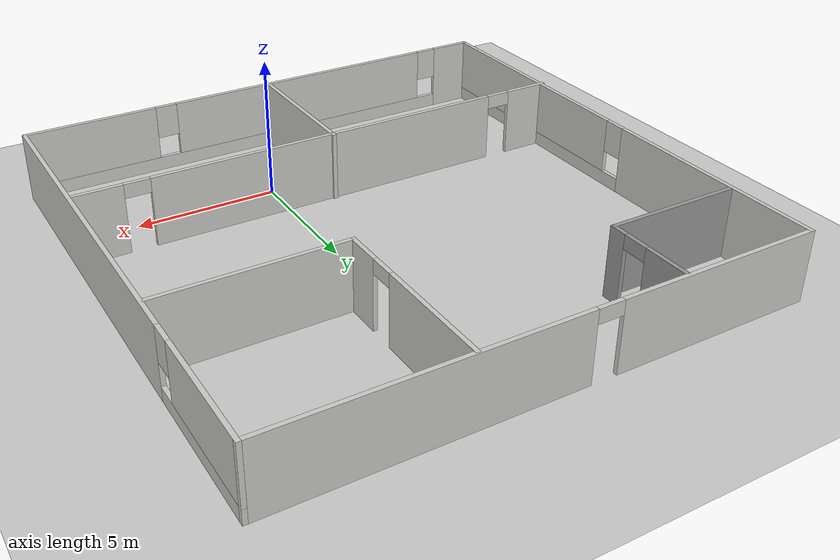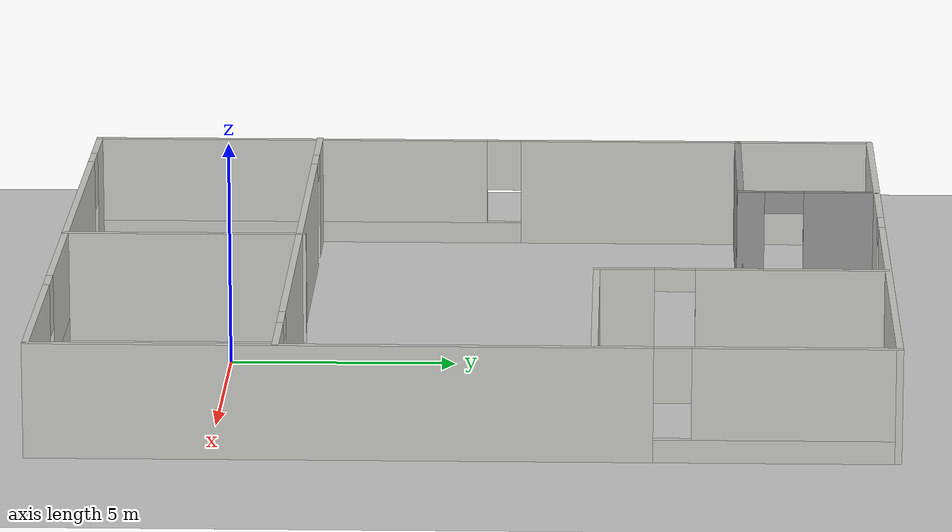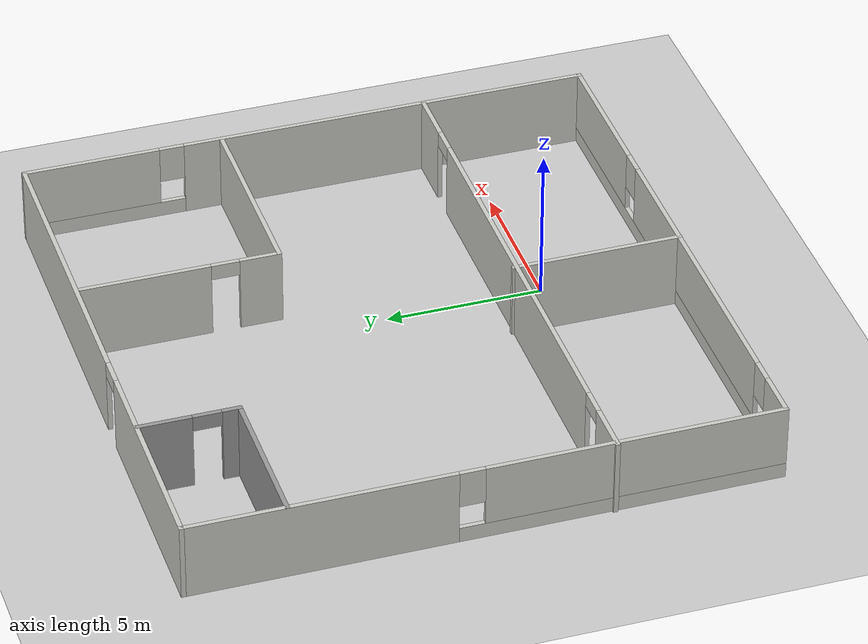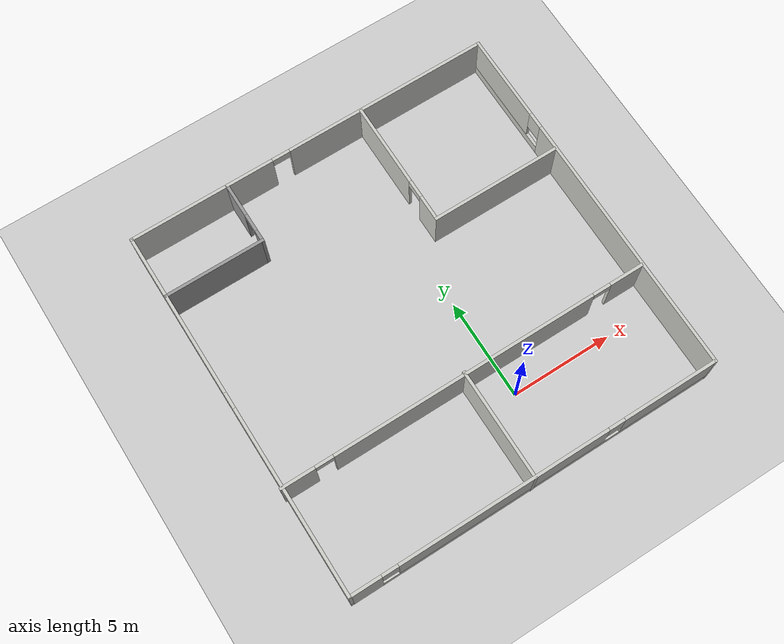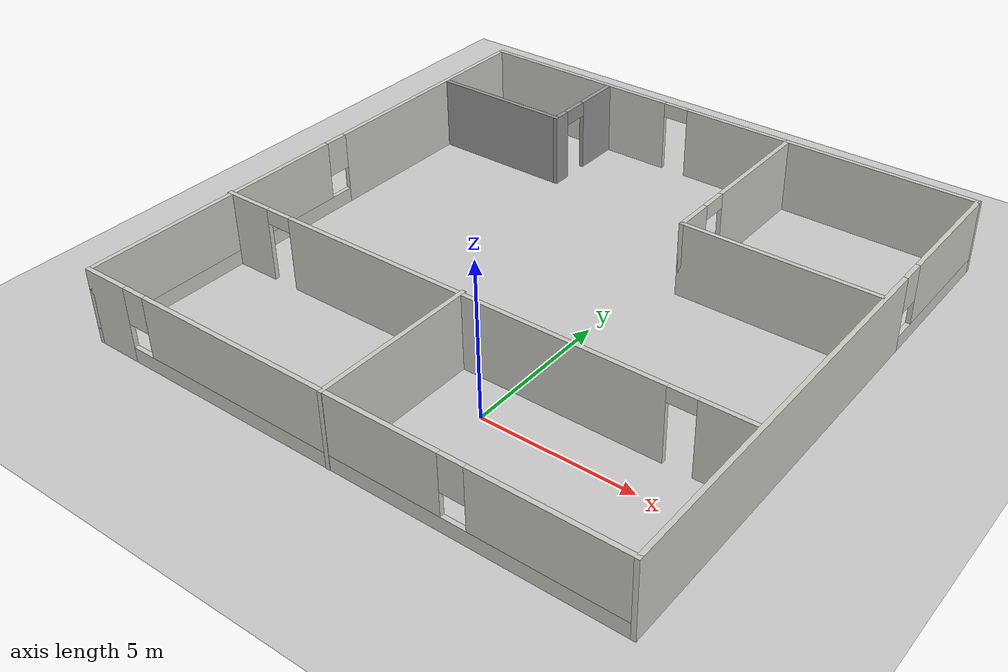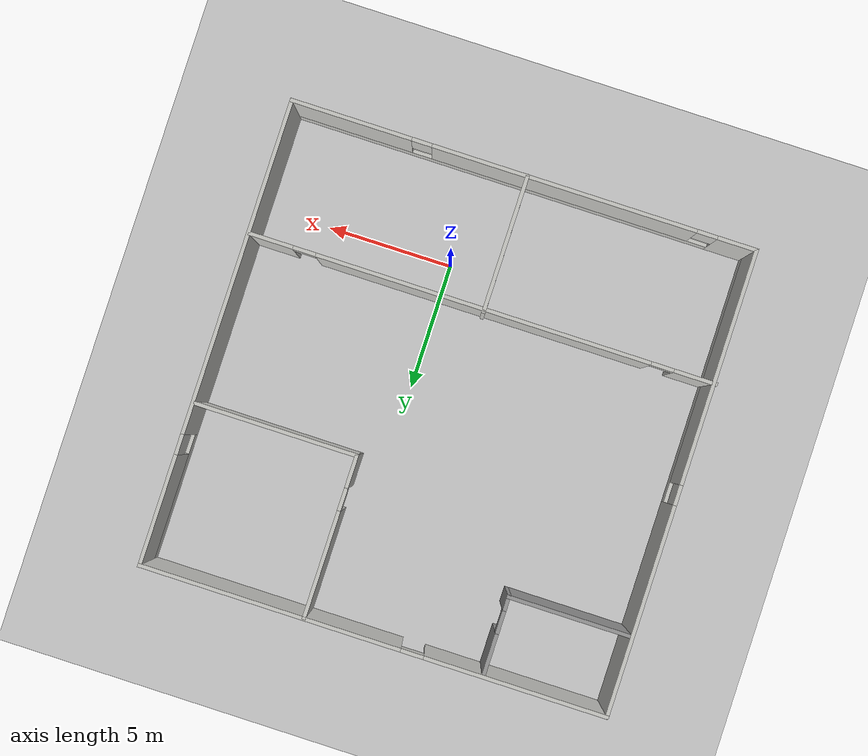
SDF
<sdf version="1.7">
 <world name="default">
  <light name="sun" type="directional">
   <pose>0 0 10 0 -0 0</pose>
   <diffuse>0.8 0.8 0.8 1</diffuse>
   <specular>0.2 0.2 0.2 1</specular>
   <attenuation>
    <range>1000</range>
    <constant>0.9</constant>
    <linear>0.01</linear>
    <quadratic>0.001</quadratic>
   </attenuation>
   <direction>-0.5 0.1 -0.9</direction>
   <spot><inner_angle>0</inner_angle><outer_angle>0</outer_angle><falloff>0</falloff></spot>
  </light>
  <model name="ground_plane">
   <static>1</static>
   <link name="link">
    <collision name="collision">
     <geometry><plane><normal>0 0 1</normal><size>100 100</size></plane></geometry>
     <surface><friction><ode><mu>100</mu><mu2>50</mu2></ode></friction></surface>
    </collision>
    <visual name="visual">
     <cast_shadows>0</cast_shadows>
     <geometry><plane><normal>0 0 1</normal><size>100 100</size></plane></geometry>
     <material>
      <script><uri>file://media/materials/scripts/gazebo.material</uri><name>Gazebo/Grey</name></script>
     </material>
    </visual>
   </link>
  </model>
  <gravity>0 0 -9.8</gravity>
  <magnetic_field>6e-06 2.3e-05 -4.2e-05</magnetic_field>
  <atmosphere type="adiabatic"/>
  <physics type="ode">
   <max_step_size>0.001</max_step_size>
   <real_time_factor>1</real_time_factor>
   <real_time_update_rate>1000</real_time_update_rate>
  </physics>
  <scene><ambient>0.4 0.4 0.4 1</ambient><background>0.7 0.7 0.7 1</background><shadows>1</shadows></scene>
  <audio><device>default</device></audio>
  <spherical_coordinates>
   <surface_model>EARTH_WGS84</surface_model>
   <latitude_deg>0</latitude_deg>
   <longitude_deg>0</longitude_deg>
   <elevation>0</elevation>
   <heading_deg>0</heading_deg>
  </spherical_coordinates>
  <model name="my_house">
   <pose>-1.69027 5.65214 0 0 -0 0</pose>
   <link name="Wall_0">
    <pose>-9.13963 -0.300707 0 0 -0 -1.5708</pose>
    <visual name="Wall_0_Visual_0">
     <pose>-5.06693 0 1.25 0 -0 0</pose>
     <geometry><box><size>8.36613 0.15 2.5</size></box></geometry>
     <material>
      <script><uri>file://media/materials/scripts/gazebo.material</uri><name>Gazebo/CeilingTiled</name></script>
      <ambient>1 1 1 1</ambient>
     </material>
     <meta><layer>0</layer></meta>
    </visual>
    <collision name="Wall_0_Collision_0">
     <geometry><box><size>8.36613 0.15 2.5</size></box></geometry>
     <pose>-5.06693 0 1.25 0 -0 0</pose>
    </collision>
    <visual name="Wall_0_Visual_1">
     <pose>4.18307 0 0.25 0 -0 0</pose>
     <geometry><box><size>10.1339 0.15 0.5</size></box></geometry>
     <material>
      <script><uri>file://media/materials/scripts/gazebo.material</uri><name>Gazebo/CeilingTiled</name></script>
      <ambient>1 1 1 1</ambient>
     </material>
     <meta><layer>0</layer></meta>
    </visual>
    <collision name="Wall_0_Collision_1">
     <geometry><box><size>10.1339 0.15 0.5</size></box></geometry>
     <pose>4.18307 0 0.25 0 -0 0</pose>
    </collision>
    <visual name="Wall_0_Visual_2">
     <pose>4.58307 0 1.5 0 -0 0</pose>
     <geometry><box><size>9.33387 0.15 2</size></box></geometry>
     <material>
      <script><uri>file://media/materials/scripts/gazebo.material</uri><name>Gazebo/CeilingTiled</name></script>
      <ambient>1 1 1 1</ambient>
     </material>
     <meta><layer>0</layer></meta>
    </visual>
    <collision name="Wall_0_Collision_2">
     <geometry><box><size>9.33387 0.15 2</size></box></geometry>
     <pose>4.58307 0 1.5 0 -0 0</pose>
    </collision>
    <visual name="Wall_0_Visual_3">
     <pose>-0.483869 0 1.9 0 -0 0</pose>
     <geometry><box><size>0.8 0.15 1.2</size></box></geometry>
     <material>
      <script><uri>file://media/materials/scripts/gazebo.material</uri><name>Gazebo/CeilingTiled</name></script>
      <ambient>1 1 1 1</ambient>
     </material>
     <meta><layer>0</layer></meta>
    </visual>
    <collision name="Wall_0_Collision_3">
     <geometry><box><size>0.8 0.15 1.2</size></box></geometry>
     <pose>-0.483869 0 1.9 0 -0 0</pose>
    </collision>
   </link>
   <link name="Wall_1">
    <pose>0.035367 -9.47571 0 0 -0 0</pose>
    <visual name="Wall_1_Visual_0">
     <pose>-8.44444 0 1.25 0 -0 0</pose>
     <geometry><box><size>1.61112 0.15 2.5</size></box></geometry>
     <material>
      <script><uri>file://media/materials/scripts/gazebo.material</uri><name>Gazebo/CeilingTiled</name></script>
      <ambient>1 1 1 1</ambient>
     </material>
     <meta><layer>0</layer></meta>
    </visual>
    <collision name="Wall_1_Collision_0">
     <geometry><box><size>1.61112 0.15 2.5</size></box></geometry>
     <pose>-8.44444 0 1.25 0 -0 0</pose>
    </collision>
    <visual name="Wall_1_Visual_1">
     <pose>0.80556 0 0.25 0 -0 0</pose>
     <geometry><box><size>16.8889 0.15 0.5</size></box></geometry>
     <material>
      <script><uri>file://media/materials/scripts/gazebo.material</uri><name>Gazebo/CeilingTiled</name></script>
      <ambient>1 1 1 1</ambient>
     </material>
     <meta><layer>0</layer></meta>
    </visual>
    <collision name="Wall_1_Collision_1">
     <geometry><box><size>16.8889 0.15 0.5</size></box></geometry>
     <pose>0.80556 0 0.25 0 -0 0</pose>
    </collision>
    <visual name="Wall_1_Visual_2">
     <pose>-1.60425 0 1.5 0 -0 0</pose>
     <geometry><box><size>10.4693 0.15 2</size></box></geometry>
     <material>
      <script><uri>file://media/materials/scripts/gazebo.material</uri><name>Gazebo/CeilingTiled</name></script>
      <ambient>1 1 1 1</ambient>
     </material>
     <meta><layer>0</layer></meta>
    </visual>
    <collision name="Wall_1_Collision_2">
     <geometry><box><size>10.4693 0.15 2</size></box></geometry>
     <pose>-1.60425 0 1.5 0 -0 0</pose>
    </collision>
    <visual name="Wall_1_Visual_3">
     <pose>6.84019 0 1.5 0 -0 0</pose>
     <geometry><box><size>4.81962 0.15 2</size></box></geometry>
     <material>
      <script><uri>file://media/materials/scripts/gazebo.material</uri><name>Gazebo/CeilingTiled</name></script>
      <ambient>1 1 1 1</ambient>
     </material>
     <meta><layer>0</layer></meta>
    </visual>
    <collision name="Wall_1_Collision_3">
     <geometry><box><size>4.81962 0.15 2</size></box></geometry>
     <pose>6.84019 0 1.5 0 -0 0</pose>
    </collision>
    <visual name="Wall_1_Visual_4">
     <pose>-7.23888 0 1.9 0 -0 0</pose>
     <geometry><box><size>0.8 0.15 1.2</size></box></geometry>
     <material>
      <script><uri>file://media/materials/scripts/gazebo.material</uri><name>Gazebo/CeilingTiled</name></script>
      <ambient>1 1 1 1</ambient>
     </material>
     <meta><layer>0</layer></meta>
    </visual>
    <collision name="Wall_1_Collision_4">
     <geometry><box><size>0.8 0.15 1.2</size></box></geometry>
     <pose>-7.23888 0 1.9 0 -0 0</pose>
    </collision>
    <visual name="Wall_1_Visual_5">
     <pose>4.03038 0 1.9 0 -0 0</pose>
     <geometry><box><size>0.8 0.15 1.2</size></box></geometry>
     <material>
      <script><uri>file://media/materials/scripts/gazebo.material</uri><name>Gazebo/CeilingTiled</name></script>
      <ambient>1 1 1 1</ambient>
     </material>
     <meta><layer>0</layer></meta>
    </visual>
    <collision name="Wall_1_Collision_5">
     <geometry><box><size>0.8 0.15 1.2</size></box></geometry>
     <pose>4.03038 0 1.9 0 -0 0</pose>
    </collision>
   </link>
   <link name="Wall_10">
    <collision name="Wall_10_Collision">
     <geometry><box><size>6.5 0.15 2.5</size></box></geometry>
     <pose>0 0 1.25 0 -0 0</pose>
    </collision>
    <visual name="Wall_10_Visual">
     <pose>0 0 1.25 0 -0 0</pose>
     <geometry><box><size>6.5 0.15 2.5</size></box></geometry>
     <material>
      <script><uri>file://media/materials/scripts/gazebo.material</uri><name>Gazebo/CeilingTiled</name></script>
      <ambient>1 1 1 1</ambient>
     </material>
     <meta><layer>0</layer></meta>
    </visual>
    <pose>5.92857 2.47807 0 0 -0 0</pose>
   </link>
   <link name="Wall_12">
    <collision name="Wall_12_Collision">
     <geometry><box><size>5 0.15 2.5</size></box></geometry>
     <pose>0 0 1.25 0 -0 0</pose>
    </collision>
    <visual name="Wall_12_Visual">
     <pose>0 0 1.25 0 -0 0</pose>
     <geometry><box><size>5 0.15 2.5</size></box></geometry>
     <material>
      <script><uri>file://media/materials/scripts/gazebo.material</uri><name>Gazebo/Grey</name></script>
      <ambient>1 1 1 1</ambient>
     </material>
     <meta><layer>0</layer></meta>
    </visual>
    <pose>-6.70818 5.7406 0 0 -0 0</pose>
   </link>
   <link name="Wall_13">
    <pose>-4.28318 7.2906 0 0 -0 1.5708</pose>
    <visual name="Wall_13_Visual_0">
     <pose>-1.31079 0 1.25 0 -0 0</pose>
     <geometry><box><size>0.628427 0.15 2.5</size></box></geometry>
     <material>
      <script><uri>file://media/materials/scripts/gazebo.material</uri><name>Gazebo/Grey</name></script>
      <ambient>1 1 1 1</ambient>
     </material>
     <meta><layer>0</layer></meta>
    </visual>
    <collision name="Wall_13_Collision_0">
     <geometry><box><size>0.628427 0.15 2.5</size></box></geometry>
     <pose>-1.31079 0 1.25 0 -0 0</pose>
    </collision>
    <visual name="Wall_13_Visual_1">
     <pose>0.764214 0 1.25 0 -0 0</pose>
     <geometry><box><size>1.72157 0.15 2.5</size></box></geometry>
     <material>
      <script><uri>file://media/materials/scripts/gazebo.material</uri><name>Gazebo/Grey</name></script>
      <ambient>1 1 1 1</ambient>
     </material>
     <meta><layer>0</layer></meta>
    </visual>
    <collision name="Wall_13_Collision_1">
     <geometry><box><size>1.72157 0.15 2.5</size></box></geometry>
     <pose>0.764214 0 1.25 0 -0 0</pose>
    </collision>
    <visual name="Wall_13_Visual_2">
     <pose>-0.546573 0 2.25 0 -0 0</pose>
     <geometry><box><size>0.9 0.15 0.5</size></box></geometry>
     <material>
      <script><uri>file://media/materials/scripts/gazebo.material</uri><name>Gazebo/Grey</name></script>
      <ambient>1 1 1 1</ambient>
     </material>
     <meta><layer>0</layer></meta>
    </visual>
    <collision name="Wall_13_Collision_2">
     <geometry><box><size>0.9 0.15 0.5</size></box></geometry>
     <pose>-0.546573 0 2.25 0 -0 0</pose>
    </collision>
   </link>
   <link name="Wall_2">
    <pose>9.21037 -0.300707 0 0 -0 1.5708</pose>
    <visual name="Wall_2_Visual_0">
     <pose>-2.61481 0 1.25 0 -0 0</pose>
     <geometry><box><size>13.2704 0.15 2.5</size></box></geometry>
     <material>
      <script><uri>file://media/materials/scripts/gazebo.material</uri><name>Gazebo/CeilingTiled</name></script>
      <ambient>1 1 1 1</ambient>
     </material>
     <meta><layer>0</layer></meta>
    </visual>
    <collision name="Wall_2_Collision_0">
     <geometry><box><size>13.2704 0.15 2.5</size></box></geometry>
     <pose>-2.61481 0 1.25 0 -0 0</pose>
    </collision>
    <visual name="Wall_2_Visual_1">
     <pose>6.6352 0 0.25 0 -0 0</pose>
     <geometry><box><size>5.22961 0.15 0.5</size></box></geometry>
     <material>
      <script><uri>file://media/materials/scripts/gazebo.material</uri><name>Gazebo/CeilingTiled</name></script>
      <ambient>1 1 1 1</ambient>
     </material>
     <meta><layer>0</layer></meta>
    </visual>
    <collision name="Wall_2_Collision_1">
     <geometry><box><size>5.22961 0.15 0.5</size></box></geometry>
     <pose>6.6352 0 0.25 0 -0 0</pose>
    </collision>
    <visual name="Wall_2_Visual_2">
     <pose>7.03519 0 1.5 0 -0 0</pose>
     <geometry><box><size>4.42961 0.15 2</size></box></geometry>
     <material>
      <script><uri>file://media/materials/scripts/gazebo.material</uri><name>Gazebo/CeilingTiled</name></script>
      <ambient>1 1 1 1</ambient>
     </material>
     <meta><layer>0</layer></meta>
    </visual>
    <collision name="Wall_2_Collision_2">
     <geometry><box><size>4.42961 0.15 2</size></box></geometry>
     <pose>7.03519 0 1.5 0 -0 0</pose>
    </collision>
    <visual name="Wall_2_Visual_3">
     <pose>4.42039 0 1.9 0 -0 0</pose>
     <geometry><box><size>0.8 0.15 1.2</size></box></geometry>
     <material>
      <script><uri>file://media/materials/scripts/gazebo.material</uri><name>Gazebo/CeilingTiled</name></script>
      <ambient>1 1 1 1</ambient>
     </material>
     <meta><layer>0</layer></meta>
    </visual>
    <collision name="Wall_2_Collision_3">
     <geometry><box><size>0.8 0.15 1.2</size></box></geometry>
     <pose>4.42039 0 1.9 0 -0 0</pose>
    </collision>
   </link>
   <link name="Wall_3">
    <pose>0.035367 8.87429 0 0 -0 3.14159</pose>
    <visual name="Wall_3_Visual_0">
     <pose>-4.08647 0 1.25 0 -0 0</pose>
     <geometry><box><size>10.3271 0.15 2.5</size></box></geometry>
     <material>
      <script><uri>file://media/materials/scripts/gazebo.material</uri><name>Gazebo/CeilingTiled</name></script>
      <ambient>1 1 1 1</ambient>
     </material>
     <meta><layer>0</layer></meta>
    </visual>
    <collision name="Wall_3_Collision_0">
     <geometry><box><size>10.3271 0.15 2.5</size></box></geometry>
     <pose>-4.08647 0 1.25 0 -0 0</pose>
    </collision>
    <visual name="Wall_3_Visual_1">
     <pose>5.61353 0 1.25 0 -0 0</pose>
     <geometry><box><size>7.27294 0.15 2.5</size></box></geometry>
     <material>
      <script><uri>file://media/materials/scripts/gazebo.material</uri><name>Gazebo/CeilingTiled</name></script>
      <ambient>1 1 1 1</ambient>
     </material>
     <meta><layer>0</layer></meta>
    </visual>
    <collision name="Wall_3_Collision_1">
     <geometry><box><size>7.27294 0.15 2.5</size></box></geometry>
     <pose>5.61353 0 1.25 0 -0 0</pose>
    </collision>
    <visual name="Wall_3_Visual_2">
     <pose>1.52706 0 2.25 0 -0 0</pose>
     <geometry><box><size>0.9 0.15 0.5</size></box></geometry>
     <material>
      <script><uri>file://media/materials/scripts/gazebo.material</uri><name>Gazebo/CeilingTiled</name></script>
      <ambient>1 1 1 1</ambient>
     </material>
     <meta><layer>0</layer></meta>
    </visual>
    <collision name="Wall_3_Collision_2">
     <geometry><box><size>0.9 0.15 0.5</size></box></geometry>
     <pose>1.52706 0 2.25 0 -0 0</pose>
    </collision>
   </link>
   <link name="Wall_5">
    <pose>-0.035367 -4.21648 0 0 -0 0</pose>
    <visual name="Wall_5_Visual_0">
     <pose>-8.39548 0 1.25 0 -0 0</pose>
     <geometry><box><size>1.70904 0.15 2.5</size></box></geometry>
     <material>
      <script><uri>file://media/materials/scripts/gazebo.material</uri><name>Gazebo/CeilingTiled</name></script>
      <ambient>1 1 1 1</ambient>
     </material>
     <meta><layer>0</layer></meta>
    </visual>
    <collision name="Wall_5_Collision_0">
     <geometry><box><size>1.70904 0.15 2.5</size></box></geometry>
     <pose>-8.39548 0 1.25 0 -0 0</pose>
    </collision>
    <visual name="Wall_5_Visual_1">
     <pose>-0.028378 0 1.25 0 -0 0</pose>
     <geometry><box><size>13.2252 0.15 2.5</size></box></geometry>
     <material>
      <script><uri>file://media/materials/scripts/gazebo.material</uri><name>Gazebo/CeilingTiled</name></script>
      <ambient>1 1 1 1</ambient>
     </material>
     <meta><layer>0</layer></meta>
    </visual>
    <collision name="Wall_5_Collision_1">
     <geometry><box><size>13.2252 0.15 2.5</size></box></geometry>
     <pose>-0.028378 0 1.25 0 -0 0</pose>
    </collision>
    <visual name="Wall_5_Visual_2">
     <pose>8.3671 0 1.25 0 -0 0</pose>
     <geometry><box><size>1.7658 0.15 2.5</size></box></geometry>
     <material>
      <script><uri>file://media/materials/scripts/gazebo.material</uri><name>Gazebo/CeilingTiled</name></script>
      <ambient>1 1 1 1</ambient>
     </material>
     <meta><layer>0</layer></meta>
    </visual>
    <collision name="Wall_5_Collision_2">
     <geometry><box><size>1.7658 0.15 2.5</size></box></geometry>
     <pose>8.3671 0 1.25 0 -0 0</pose>
    </collision>
    <visual name="Wall_5_Visual_3">
     <pose>-7.09096 0 2.25 0 -0 0</pose>
     <geometry><box><size>0.9 0.15 0.5</size></box></geometry>
     <material>
      <script><uri>file://media/materials/scripts/gazebo.material</uri><name>Gazebo/CeilingTiled</name></script>
      <ambient>1 1 1 1</ambient>
     </material>
     <meta><layer>0</layer></meta>
    </visual>
    <collision name="Wall_5_Collision_3">
     <geometry><box><size>0.9 0.15 0.5</size></box></geometry>
     <pose>-7.09096 0 2.25 0 -0 0</pose>
    </collision>
    <visual name="Wall_5_Visual_4">
     <pose>7.0342 0 2.25 0 -0 0</pose>
     <geometry><box><size>0.9 0.15 0.5</size></box></geometry>
     <material>
      <script><uri>file://media/materials/scripts/gazebo.material</uri><name>Gazebo/CeilingTiled</name></script>
      <ambient>1 1 1 1</ambient>
     </material>
     <meta><layer>0</layer></meta>
    </visual>
    <collision name="Wall_5_Collision_4">
     <geometry><box><size>0.9 0.15 0.5</size></box></geometry>
     <pose>7.0342 0 2.25 0 -0 0</pose>
    </collision>
   </link>
   <link name="Wall_7">
    <collision name="Wall_7_Collision">
     <geometry><box><size>5.5 0.15 2.5</size></box></geometry>
     <pose>0 0 1.25 0 -0 0</pose>
    </collision>
    <visual name="Wall_7_Visual">
     <pose>0 0 1.25 0 -0 0</pose>
     <geometry><box><size>5.5 0.15 2.5</size></box></geometry>
     <material>
      <script><uri>file://media/materials/scripts/gazebo.material</uri><name>Gazebo/CeilingTiled</name></script>
      <ambient>1 1 1 1</ambient>
     </material>
     <meta><layer>0</layer></meta>
    </visual>
    <pose>-0.102338 -6.81429 0 0 -0 -1.5708</pose>
   </link>
   <link name="Wall_9">
    <pose>2.75357 5.65307 0 0 -0 -1.5708</pose>
    <visual name="Wall_9_Visual_0">
     <pose>-1.1219 0 1.25 0 -0 0</pose>
     <geometry><box><size>4.2562 0.15 2.5</size></box></geometry>
     <material>
      <script><uri>file://media/materials/scripts/gazebo.material</uri><name>Gazebo/CeilingTiled</name></script>
      <ambient>1 1 1 1</ambient>
     </material>
     <meta><layer>0</layer></meta>
    </visual>
    <collision name="Wall_9_Collision_0">
     <geometry><box><size>4.2562 0.15 2.5</size></box></geometry>
     <pose>-1.1219 0 1.25 0 -0 0</pose>
    </collision>
    <visual name="Wall_9_Visual_1">
     <pose>2.5781 0 1.25 0 -0 0</pose>
     <geometry><box><size>1.3438 0.15 2.5</size></box></geometry>
     <material>
      <script><uri>file://media/materials/scripts/gazebo.material</uri><name>Gazebo/CeilingTiled</name></script>
      <ambient>1 1 1 1</ambient>
     </material>
     <meta><layer>0</layer></meta>
    </visual>
    <collision name="Wall_9_Collision_1">
     <geometry><box><size>1.3438 0.15 2.5</size></box></geometry>
     <pose>2.5781 0 1.25 0 -0 0</pose>
    </collision>
    <visual name="Wall_9_Visual_2">
     <pose>1.4562 0 2.25 0 -0 0</pose>
     <geometry><box><size>0.9 0.15 0.5</size></box></geometry>
     <material>
      <script><uri>file://media/materials/scripts/gazebo.material</uri><name>Gazebo/CeilingTiled</name></script>
      <ambient>1 1 1 1</ambient>
     </material>
     <meta><layer>0</layer></meta>
    </visual>
    <collision name="Wall_9_Collision_2">
     <geometry><box><size>0.9 0.15 0.5</size></box></geometry>
     <pose>1.4562 0 2.25 0 -0 0</pose>
    </collision>
   </link>
   <static>1</static>
  </model>
 </world>
</sdf>
